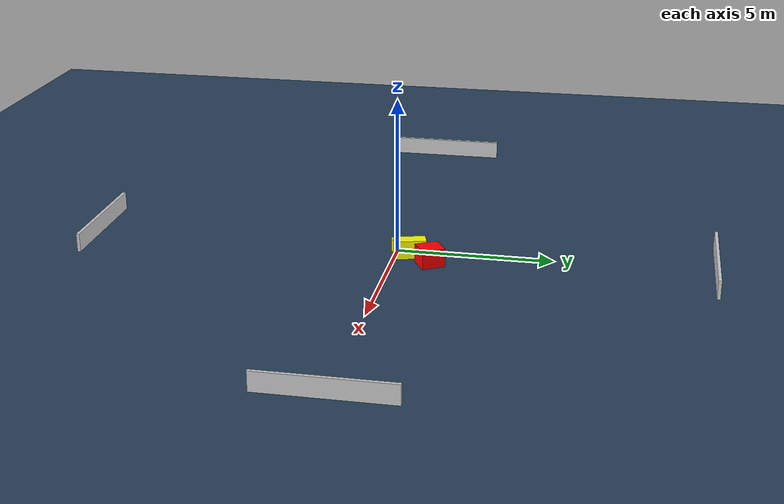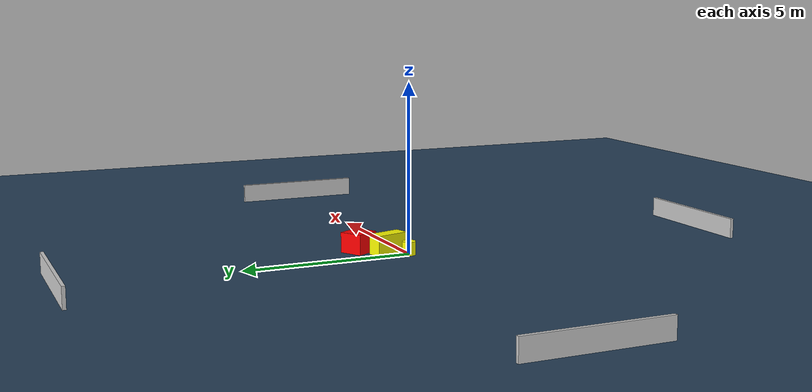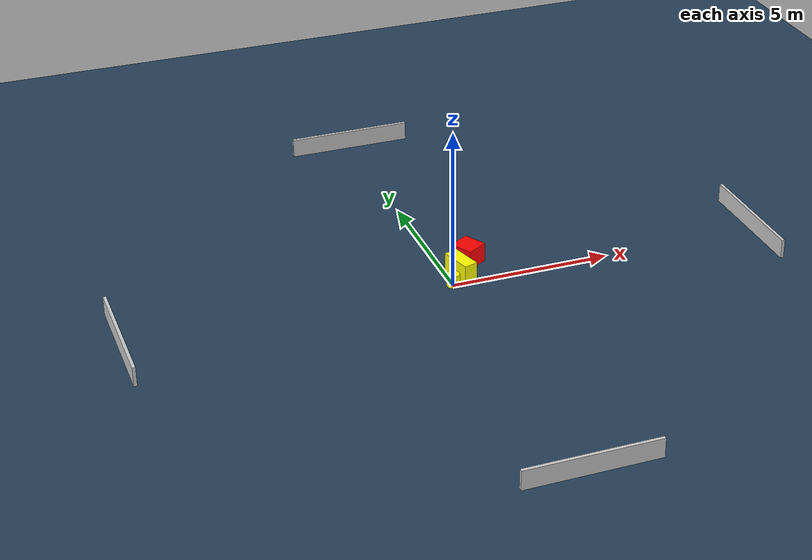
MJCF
<?xml version="1.0" ?>
<mujoco model="generated_environment">
  <option timestep="0.01" integrator="RK4" cone="elliptic"/>
  <default>
    <geom density="1"/>
  </default>
  <asset>
    <texture builtin="gradient" height="3072" name="skybox" rgb1="0.3 0.5 0.7" rgb2="0 0 0" type="skybox" width="512"/>
    <texture builtin="checker" height="300" name="groundplane" rgb1="0.2 0.3 0.4" rgb2="0.1 0.2 0.3" type="2d" width="300"/>
    <material name="groundplane" reflectance="0.2" texrepeat="5 5" texture="groundplane"/>
  </asset>
  <worldbody>
    <light dir="0 0 -1" directional="true" pos="0 0 1.5"/>
    <geom condim="3" friction="0.5 0.005 0.001" material="groundplane" name="floor" pos="0 0 0" size="0 0 0.05" type="plane"/>
    <body name="walls">
      <geom name="wall_1" condim="4" pos="-10.0 0.0 0.3" rgba="0.800000011920929 0.800000011920929 0.800000011920929 1.0" size="0.05 2.0 0.3" type="box"/>
      <geom name="wall_2" condim="4" pos="10.0 0.0 0.3" rgba="0.800000011920929 0.800000011920929 0.800000011920929 1.0" size="0.05 2.0 0.3" type="box"/>
      <geom name="wall_3" condim="4" pos="0.0 -10.0 0.3" rgba="0.800000011920929 0.800000011920929 0.800000011920929 1.0" size="2.0 0.05 0.3" type="box"/>
      <geom name="wall_4" condim="4" pos="0.0 10.0 0.3" rgba="0.800000011920929 0.800000011920929 0.800000011920929 1.0" size="2.0 0.05 0.3" type="box"/>
    </body>
    <body name="robot">
      <joint name="joint_x" type="slide" pos="0 0 0" axis="1 0 0"/>
      <joint name="joint_y" type="slide" pos="0 0 0" axis="0 1 0"/>
      <geom name="robot" type="cylinder" pos="0.0 0.0 0.2" size="0.2 0.2 0.0" mass="5.0" friction="1.0 0.005 0.0001" condim="4" rgba="1.0 1.0 0.0 1.0"/>
    </body>
    <body name="obstacle_1_movable">
      <geom name="obstacle_1_movable" condim="4" pos="0.428565645269387 0.4709568456815212 0.3" euler="0 0 106.03128719488718" friction="0.0 0.005 0.001" rgba="1.0 1.0 0.0 1.0" size="0.5116270391665609 0.2213294423949416 0.3" type="box" mass="0.1"/>
      <joint type="free"/>
    </body>
    <body name="obstacle_2_static">
      <geom name="obstacle_2_static" condim="4" pos="0.9378251896300298 1.2006054085419695 0.3" euler="0 0 29.916138984890857" friction="0.0 0.005 0.001" rgba="1.0 0.0 0.0 1.0" size="0.35523645858221986 0.3760601373934172 0.3" type="box"/>
    </body>
  </worldbody>
  <actuator>
    <motor name="actuator_x" joint="joint_x" gear="1" ctrlrange="-1 1"/>
    <motor name="actuator_y" joint="joint_y" gear="1" ctrlrange="-1 1"/>
  </actuator>
</mujoco>
